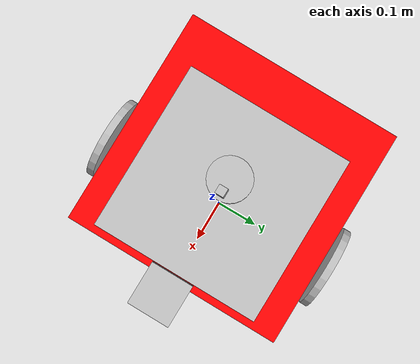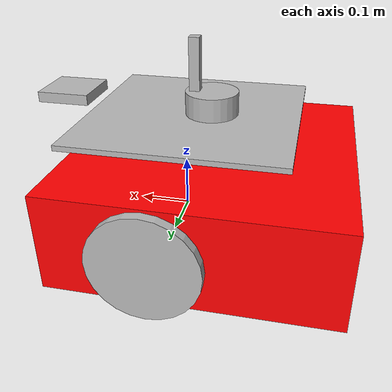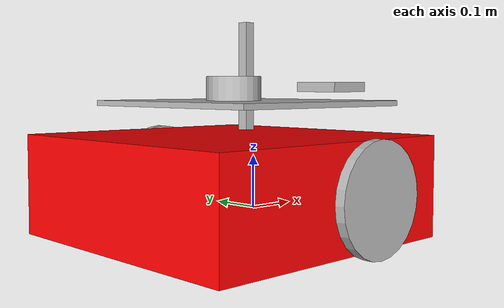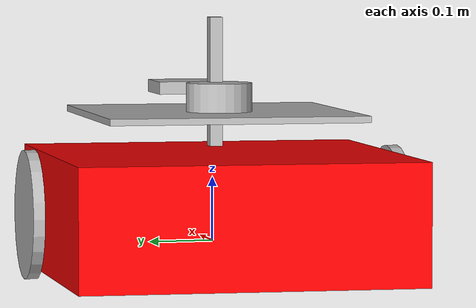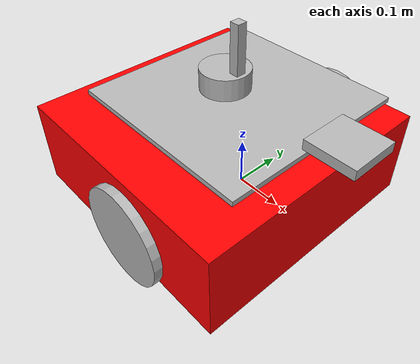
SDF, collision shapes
<?xml version="1.0" ?>
<sdf version="1.5">
    <model name="amazon_robot2">
        <pose>0.0 0.0 0.0 0.0 0.0 0.0</pose>
        <link name="base_footprint"/>
        <link name="base_link">
            <inertial>
                <pose>-0.064 0 0.048 0 0 0</pose>
                <inertia>
                    <ixx>0.001</ixx>
                    <ixy>0.000</ixy>
                    <ixz>0.000</ixz>
                    <iyy>0.001</iyy>
                    <iyz>0.000</iyz>
                    <izz>0.001</izz>
                </inertia>
                <mass>1.0</mass>
            </inertial>
            <collision name="base_collision">
                <pose>-0.064 0 0.048 0 0 0</pose>
                <geometry>
                    <box>
                        <size>0.532 0.532 0.188</size>
                    </box>
                </geometry>
            </collision>
            <visual name="base_visual">
                <pose>-0.064 0 0 0 0 0</pose>
                <geometry>
                    <mesh>
                        <uri>model://amazon_robot2/meshes/waffle_pi_base.dae</uri>
                        <scale>0.002 0.002 0.002</scale>
                    </mesh>
                </geometry>
                <material>
                  <ambient>1.0 0.0 0.0 1.0</ambient>
                  <diffuse>1.0 0.0 0.0 1.0</diffuse>
                  <specular>0.0 0.0 0.0 1.0</specular>
                  <emissive>0.0 0.0 0.0 1.0</emissive>
                </material>
            </visual>
        </link>
        <link name="imu_link">
            <sensor name="amazon_robot_imu" type="imu">
                <always_on>true</always_on>
                <update_rate>300</update_rate>
                <imu>
                    <angular_velocity>
                        <x>
                            <noise type="gaussian">
                                <mean>0.0</mean>
                                <stddev>2e-4</stddev>
                            </noise>
                        </x>
                        <y>
                            <noise type="gaussian">
                                <mean>0.0</mean>
                                <stddev>2e-4</stddev>
                            </noise>
                        </y>
                        <z>
                            <noise type="gaussian">
                                <mean>0.0</mean>
                                <stddev>2e-4</stddev>
                            </noise>
                        </z>
                    </angular_velocity>
                    <linear_acceleration>
                        <x>
                            <noise type="gaussian">
                                <mean>0.0</mean>
                                <stddev>1.7e-2</stddev>
                            </noise>
                        </x>
                        <y>
                            <noise type="gaussian">
                                <mean>0.0</mean>
                                <stddev>1.7e-2</stddev>
                            </noise>
                        </y>
                        <z>
                            <noise type="gaussian">
                                <mean>0.0</mean>
                                <stddev>1.7e-2</stddev>
                            </noise>
                        </z>
                    </linear_acceleration>
                </imu>
                <plugin name="amazon_robot_imu" filename="libgazebo_ros_imu_sensor.so">
                  <initial_orientation_as_reference>false</initial_orientation_as_reference>
                  <frame_name>imu_link</frame_name>
                  <ros>
                    <namespace>/imu</namespace>
                    <remapping>~/out:=data</remapping>
                  </ros>
                </plugin>
            </sensor>
        </link>
        <link name="base_scan">
            <inertial>
                <pose>-0.052 0 0.222 0 0 0</pose>
                <inertia>
                    <ixx>0.001</ixx>
                    <ixy>0.000</ixy>
                    <ixz>0.000</ixz>
                    <iyy>0.001</iyy>
                    <iyz>0.000</iyz>
                    <izz>0.001</izz>
                </inertia>
                <mass>0.125</mass>
            </inertial>
            <collision name="lidar_sensor_collision">
                <pose>-0.052 0 0.222 0 0 0</pose>
                <geometry>
                    <cylinder>
                        <radius>0.0508</radius>
                        <length>0.055</length>
                    </cylinder>
                </geometry>
            </collision>
            <visual name="lidar_sensor_visual">
                <pose>-0.064 0 0.242 0 0 0</pose>
                <geometry>
                    <mesh>
                        <uri>model://amazon_robot2/meshes/lds.dae</uri>
                        <scale>0.001 0.001 0.001</scale>
                    </mesh>
                </geometry>
            </visual>
            <sensor name="hls_lfcd_lds" type="ray">
                <always_on>true</always_on>
                <visualize>true</visualize>
                <pose>-0.064 0 0.242 0 0 0</pose>
                <update_rate>5</update_rate>
                <ray>
                    <scan>
                        <horizontal>
                            <samples>360</samples>
                            <resolution>1.000000</resolution>
                            <min_angle>0.000000</min_angle>
                            <max_angle>6.280000</max_angle>
                        </horizontal>
                    </scan>
                    <range>
                        <min>0.130000</min>
                        <max>3.5</max>
                        <resolution>0.015000</resolution>
                    </range>
                    <noise>
                        <type>gaussian</type>
                        <mean>0.0</mean>
                        <stddev>0.01</stddev>
                    </noise>
                </ray>
                <plugin name="amazon_robot_laserscan" filename="libgazebo_ros_ray_sensor.so">
                    <ros>
                        <remapping>~/out:=scan</remapping>
                    </ros>
                    <output_type>sensor_msgs/LaserScan</output_type>
                    <frame_name>base_scan</frame_name>
                </plugin>
            </sensor>
        </link>
        <link name="wheel_left_link">
            <inertial>
                <pose>0.0 0.288 0.046 -1.57 0 0</pose>
                <inertia>
                    <ixx>0.001</ixx>
                    <ixy>0.000</ixy>
                    <ixz>0.000</ixz>
                    <iyy>0.001</iyy>
                    <iyz>0.000</iyz>
                    <izz>0.001</izz>
                </inertia>
                <mass>0.1</mass>
            </inertial>
            <collision name="wheel_left_collision">
                <pose>0.0 0.288 0.046 -1.57 0 0</pose>
                <geometry>
                    <cylinder>
                        <radius>0.100</radius>
                        <length>0.018</length>
                    </cylinder>
                </geometry>
                <surface>
                    <!-- This friction pamareter don't contain reliable data!! -->
                    <friction>
                        <ode>
                            <mu>100000.0</mu>
                            <mu2>100000.0</mu2>
                            <fdir1>0 0 0</fdir1>
                            <slip1>0.0</slip1>
                            <slip2>0.0</slip2>
                        </ode>
                    </friction>
                    <contact>
                        <ode>
                            <soft_cfm>0</soft_cfm>
                            <soft_erp>0.2</soft_erp>
                            <kp>1e+5</kp>
                            <kd>1</kd>
                            <max_vel>0.01</max_vel>
                            <min_depth>0.001</min_depth>
                        </ode>
                    </contact>
                </surface>
            </collision>
            <visual name="wheel_left_visual">
                <pose>0.0 0.288 0.046 0 0 0</pose>
                <geometry>
                    <mesh>
                        <uri>model://amazon_robot2/meshes/left_tire.dae</uri>
                        <scale>0.002 0.002 0.002</scale>
                    </mesh>
                </geometry>
            </visual>
        </link>
        <link name="wheel_right_link">
            <inertial>
                <pose>0.0 -0.288 0.046 -1.57 0 0</pose>
                <inertia>
                    <ixx>0.001</ixx>
                    <ixy>0.000</ixy>
                    <ixz>0.000</ixz>
                    <iyy>0.001</iyy>
                    <iyz>0.000</iyz>
                    <izz>0.001</izz>
                </inertia>
                <mass>0.1</mass>
            </inertial>
            <collision name="wheel_right_collision">
                <pose>0.0 -0.288 0.046 -1.57 0 0</pose>
                <geometry>
                    <cylinder>
                        <radius>0.100</radius>
                        <length>0.018</length>
                    </cylinder>
                </geometry>
                <surface>
                    <!-- This friction pamareter don't contain reliable data!! -->
                    <friction>
                        <ode>
                            <mu>100000.0</mu>
                            <mu2>100000.0</mu2>
                            <fdir1>0 0 0</fdir1>
                            <slip1>0.0</slip1>
                            <slip2>0.0</slip2>
                        </ode>
                    </friction>
                    <contact>
                        <ode>
                            <soft_cfm>0</soft_cfm>
                            <soft_erp>0.2</soft_erp>
                            <kp>1e+5</kp>
                            <kd>1</kd>
                            <max_vel>0.01</max_vel>
                            <min_depth>0.001</min_depth>
                        </ode>
                    </contact>
                </surface>
            </collision>
            <visual name="wheel_right_visual">
                <pose>0.0 -0.288 0.046 0 0 0</pose>
                <geometry>
                    <mesh>
                        <uri>model://amazon_robot2/meshes/right_tire.dae</uri>
                        <scale>0.002 0.002 0.002</scale>
                    </mesh>
                </geometry>
            </visual>
        </link>
        <link name='caster_back_right_link'>
            <pose>-0.268 -0.064 -0.016 0 0 0</pose>
            <inertial>
                <mass>0.001</mass>
                <inertia>
                    <ixx>0.00001</ixx>
                    <ixy>0.000</ixy>
                    <ixz>0.000</ixz>
                    <iyy>0.00001</iyy>
                    <iyz>0.000</iyz>
                    <izz>0.00001</izz>
                </inertia>
            </inertial>
            <collision name='collision'>
                <geometry>
                    <sphere>
                        <radius>0.005000</radius>
                    </sphere>
                </geometry>
                <surface>
                    <contact>
                        <ode>
                            <soft_cfm>0</soft_cfm>
                            <soft_erp>0.2</soft_erp>
                            <kp>1e+5</kp>
                            <kd>1</kd>
                            <max_vel>0.01</max_vel>
                            <min_depth>0.001</min_depth>
                        </ode>
                    </contact>
                </surface>
            </collision>
        </link>
        <link name='caster_back_left_link'>
            <pose>-0.268 0.064 -0.016 0 0 0</pose>
            <inertial>
                <mass>0.001</mass>
                <inertia>
                    <ixx>0.00001</ixx>
                    <ixy>0.000</ixy>
                    <ixz>0.000</ixz>
                    <iyy>0.00001</iyy>
                    <iyz>0.000</iyz>
                    <izz>0.00001</izz>
                </inertia>
            </inertial>
            <collision name='collision'>
                <geometry>
                    <sphere>
                        <radius>0.005000</radius>
                    </sphere>
                </geometry>
                <surface>
                    <contact>
                        <ode>
                            <soft_cfm>0</soft_cfm>
                            <soft_erp>0.2</soft_erp>
                            <kp>1e+5</kp>
                            <kd>1</kd>
                            <max_vel>0.01</max_vel>
                            <min_depth>0.001</min_depth>
                        </ode>
                    </contact>
                </surface>
            </collision>
        </link>
        <link name="lift_link">
            <pose>-0.02 0.0 0.20 0 0 0</pose>
            <visual name="lift_visual">
                <geometry>
                    <box>
                        <size>0.60 0.60 0.05</size>
                    </box>
                </geometry>
            </visual>
            <inertial>
                <inertia>
                    <ixx>0.001</ixx>
                    <ixy>0.000</ixy>
                    <ixz>0.000</ixz>
                    <iyy>0.001</iyy>
                    <iyz>0.000</iyz>
                    <izz>0.001</izz>
                </inertia>
                <mass>0.1</mass>
            </inertial>
            <collision name="lift_collision">
                <geometry>
                    <box>
                        <size>0.40 0.40 0.01</size>
                    </box>
                </geometry>
                <surface>
                    <friction>
                        <ode>
                            <mu>1000000</mu>
                            <mu2>100000</mu2>
                            <fdir1>0 0 0</fdir1>
                            <slip1>0.0</slip1>
                            <slip2>0.0</slip2>
                        </ode>
                    </friction>
                    <contact>
                        <ode>
                            <soft_cfm>0</soft_cfm>
                            <soft_erp>0.2</soft_erp>
                            <kp>1e+5</kp>
                            <kd>1</kd>
                            <max_vel>0.01</max_vel>
                            <min_depth>0.001</min_depth>
                        </ode>
                    </contact>
                </surface>
            </collision>
        </link>
        <link name="link_platform_mid">
            <visual name="link_platform_mid_visual">
                <pose>-0.02 0.0 0.25 0 0 0</pose>
                <geometry>
                    <box>
                        <size>0.02 0.02 0.25</size>
                    </box>
                </geometry>
            </visual>
            <inertial>
                <pose>-0.02 0.0 0.25 0 0 0</pose>
                <inertia>
                    <ixx>0.001</ixx>
                    <ixy>0.000</ixy>
                    <ixz>0.000</ixz>
                    <iyy>0.001</iyy>
                    <iyz>0.000</iyz>
                    <izz>0.001</izz>
                </inertia>
                <mass>0.1</mass>
            </inertial>
            <collision name="link_platform_mid_collision">
                <pose>-0.02 0.0 0.25 0 0 0</pose>
                <geometry>
                    <box>
                        <size>0.02 0.02 0.20</size>
                    </box>
                </geometry>
                <surface>
                    <friction>
                        <ode>
                            <mu>1.0</mu>
                            <mu2>1.0</mu2>
                            <fdir1>0 0 0</fdir1>
                            <slip1>0.0</slip1>
                            <slip2>0.0</slip2>
                        </ode>
                    </friction>
                    <contact>
                        <ode>
                            <soft_cfm>0</soft_cfm>
                            <soft_erp>0.2</soft_erp>
                            <kp>1e+5</kp>
                            <kd>1</kd>
                            <max_vel>0.01</max_vel>
                            <min_depth>0.001</min_depth>
                        </ode>
                    </contact>
                </surface>
            </collision>
        </link>
        <joint name="base_joint" type="fixed">
            <parent>base_footprint</parent>
            <child>base_link</child>
            <pose>0.0 0.0 0.010 0 0 0</pose>
        </joint>
        <joint name="wheel_left_joint" type="revolute">
            <parent>base_link</parent>
            <child>wheel_left_link</child>
            <pose>0.0 0.288 0.046 -1.57 0 0</pose>
            <axis>
                <xyz>0 0 1</xyz>
            </axis>
        </joint>
        <joint name="wheel_right_joint" type="revolute">
            <parent>base_link</parent>
            <child>wheel_right_link</child>
            <pose>0.0 -0.228 0.046 -1.57 0 0</pose>
            <axis>
                <xyz>0 0 1</xyz>
            </axis>
        </joint>
        <joint name='caster_back_right_joint' type='ball'>
            <parent>base_link</parent>
            <child>caster_back_right_link</child>
        </joint>
        <joint name='caster_back_left_joint' type='ball'>
            <parent>base_link</parent>
            <child>caster_back_left_link</child>
        </joint>
        <joint name="lidar_joint" type="fixed">
            <parent>base_link</parent>
            <child>base_scan</child>
            <pose>-0.064 0 0.224 0 0 0</pose>
            <axis>
                <xyz>0 0 1</xyz>
            </axis>
        </joint>
        <joint name="imu_joint" type="fixed">
            <parent>base_link</parent>
            <child>imu_link</child>
            <pose>0.0 0.0 0.010 0 0 0</pose>
        </joint>
        <joint name="platform_joint" type="fixed">
            <parent>base_link</parent>
            <child>link_platform_mid</child>
        </joint>
        <joint name="lift_joint" type="prismatic">
            <parent>link_platform_mid</parent>
            <child>lift_link</child>
            <axis>
                <xyz>0 0 1</xyz>
                <limit>
                    <lower>0.18</lower>
                    <upper>0.60</upper>
                    <effort>20</effort>
                    <velocity>0.5</velocity>
                </limit>
                <dynamics>
                    <damping>0.1</damping>
                    <friction>0</friction>
                    <spring_reference>0</spring_reference>
                    <spring_stiffness>0</spring_stiffness>
                </dynamics>
                <use_parent_model_frame>1</use_parent_model_frame>
            </axis>
            <physics>
                <provide_feedback>1</provide_feedback>
                <ode>
                    <provide_feedback>1</provide_feedback>
                    <implicit_spring_damper>1</implicit_spring_damper>
                    <cfm_damping>1</cfm_damping>
                    <limit>
                        <cfm>0</cfm>
                        <erp>0.2</erp>
                    </limit>
                </ode>
            </physics>
        </joint>
        <plugin name="amazon_robot_diff_drive" filename="libgazebo_ros_diff_drive.so">
            <ros>
            </ros>
            <update_rate>30</update_rate>
            <!-- wheels -->
            <left_joint>wheel_left_joint</left_joint>
            <right_joint>wheel_right_joint</right_joint>
            <!-- kinematics -->
            <wheel_separation>0.576</wheel_separation>
            <wheel_diameter>0.092</wheel_diameter>
            <!-- limits -->
            <max_wheel_torque>20</max_wheel_torque>
            <max_wheel_acceleration>1.0</max_wheel_acceleration>
            <command_topic>cmd_vel</command_topic>
            <!-- output -->
            <publish_odom>true</publish_odom>
            <publish_odom_tf>true</publish_odom_tf>
            <publish_wheel_tf>false</publish_wheel_tf>
            <odometry_topic>odom</odometry_topic>
            <odometry_frame>odom</odometry_frame>
            <robot_base_frame>base_footprint</robot_base_frame>
        </plugin>
        <plugin name="amazon_robot_joint_state" filename="libgazebo_ros_joint_state_publisher.so">
            <ros>
                <remapping>~/out:=joint_states</remapping>
            </ros>
            <update_rate>30</update_rate>
            <joint_name>wheel_left_joint</joint_name>
            <joint_name>wheel_right_joint</joint_name>
        </plugin>

        <link name="camera_rgb_frame">
            <inertial>
                <inertia>
                    <ixx>0.001</ixx>
                    <ixy>0.000</ixy>
                    <ixz>0.000</ixz>
                    <iyy>0.001</iyy>
                    <iyz>0.000</iyz>
                    <izz>0.001</izz>
                </inertia>
                <mass>0.125</mass>
            </inertial>

            <collision name="camera_collision">
                <pose>0 0 0 0 0 0</pose>
                <geometry>
                    <box>
                        <size>0.10 0.10 0.02</size>
                    </box>
                </geometry>
            </collision>
            <pose>0.23 0 0.23 0 0 0</pose>
            <sensor name="camera" type="camera">
                <always_on>true</always_on>
                <visualize>true</visualize>
                <update_rate>30</update_rate>
                <camera name="intel_realsense_r200">
                    <horizontal_fov>1.02974</horizontal_fov>
                    <image>
                        <width>1920</width>
                        <height>1080</height>
                        <format>R8G8B8</format>
                    </image>
                    <clip>
                        <near>0.02</near>
                        <far>300</far>
                    </clip>
                    <noise>
                        <type>gaussian</type>
                        <mean>0.0</mean>
                        <stddev>0.007</stddev>
                    </noise>
                </camera>
                <plugin name="intel_realsense_r200_depth_driver" filename="libgazebo_ros_camera.so">
                    <ros>
                    </ros>
                    <camera_name>intel_realsense_r200_depth</camera_name>
                    <frame_name>realsense_depth_frame</frame_name>
                    <hack_baseline>0.07</hack_baseline>
                    <min_depth>0.001</min_depth>
                </plugin>
            </sensor>
        </link>

        <joint name="camera_rgb_joint" type="fixed">
            <parent>base_link</parent>
            <child>camera_rgb_frame</child>
            <axis>
                <xyz>0 0 1</xyz>
            </axis>
        </joint>

    </model>
</sdf>
